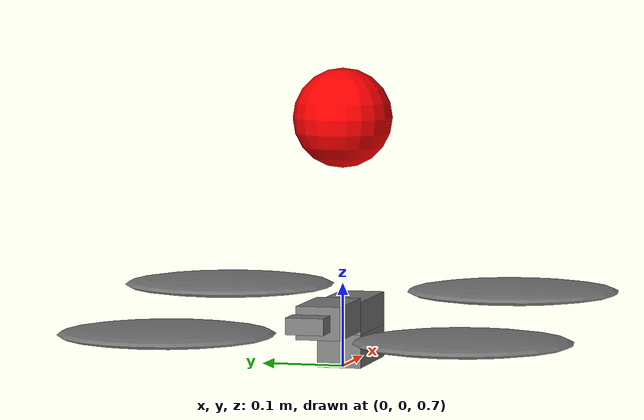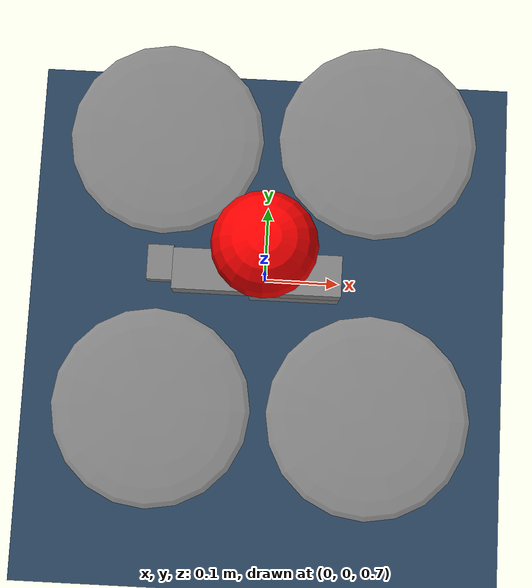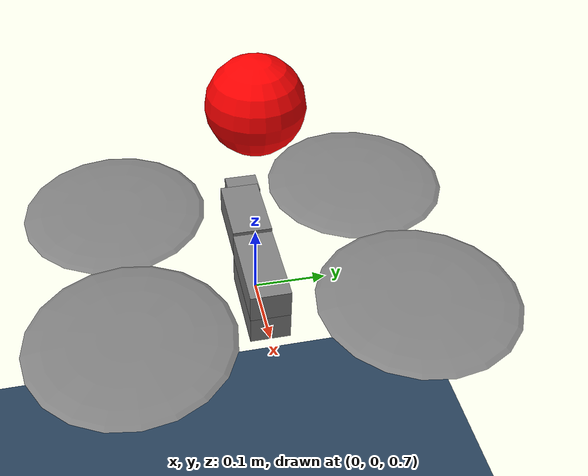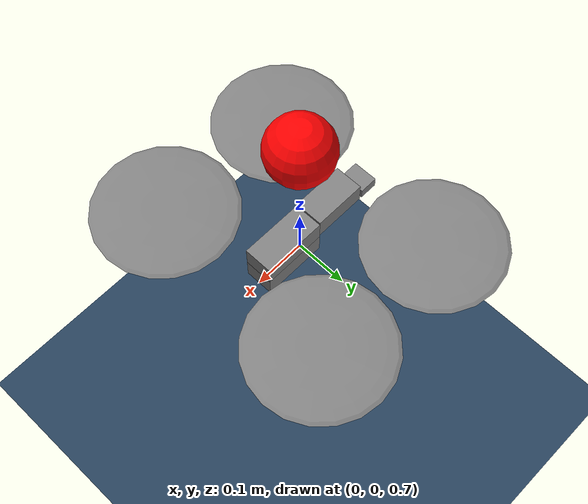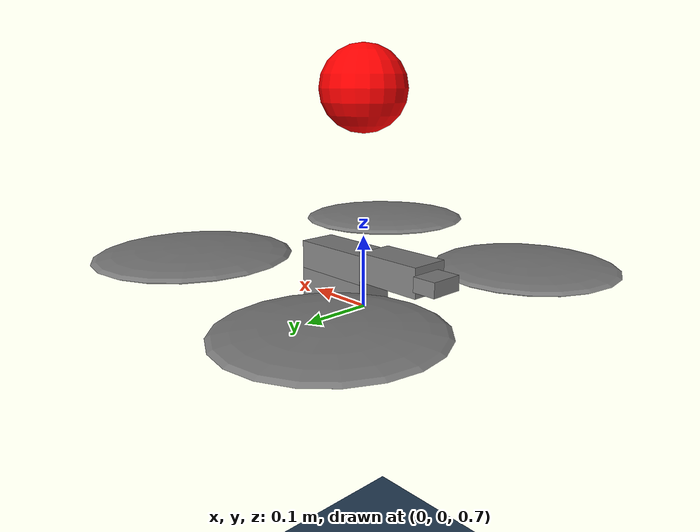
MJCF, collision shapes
<mujoco model="Skydio X2 scene">
  <include file="x2.xml"/>

  <statistic meansize=".05"/>

  <visual>
    <headlight diffuse="0.6 0.6 0.6" ambient="0.3 0.3 0.3" specular="0 0 0"/>
    <rgba haze="0.15 0.25 0.35 1"/>
    <global azimuth="-20" elevation="-20" ellipsoidinertia="true"/>
  </visual>

  <asset>
    <texture type="skybox" builtin="gradient" rgb1="0.3 0.5 0.7" rgb2="0 0 0" width="512" height="3072"/>
    <texture type="2d" name="groundplane" builtin="checker" mark="edge" rgb1="0.2 0.3 0.4" rgb2="0.1 0.2 0.3"
      markrgb="0.8 0.8 0.8" width="300" height="300"/>
    <material name="groundplane" texture="groundplane" texuniform="true" texrepeat="5 5" reflectance="0.2"/>
  </asset>

  <!-- Shilpa -->
  <worldbody>
    <light
      pos="0 0 1.5"
      dir="0 0 -1"
      directional="true"
    />

    <geom
      name="floor"
      size="0 0 0.05"
      type="plane"
      material="groundplane"
    />

    <geom
      name="tracking_target"
      type="sphere"
      size="0.06"
      pos="0 0 1"
      rgba="1 0 0 1"
      contype="0"
      conaffinity="0"
    />
  </worldbody>
</mujoco>

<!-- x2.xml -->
<mujoco model="Skydio X2">
  <compiler inertiafromgeom="true" angle="degree" autolimits="true" assetdir="assets"/>

  <option timestep=".005" iterations="50" tolerance="1e-16" solver="Newton" jacobian="dense" cone="pyramidal" density="1.225" viscosity="1.8e-5">
    <flag contact = "enable"/>
  </option>

  <default>
    <default class="x2">
      <geom mass="0"/>
      <motor ctrlrange="0 200"/>
      <mesh scale="0.01 0.01 0.01"/>
      <default class="visual">
        <geom group="2" type="mesh" contype="0" conaffinity="0"/>
      </default>
      <default class="collision">
        <geom group="3" type="box"/>
        <default class="rotor">
          <geom type="ellipsoid" size=".13 .13 .01"/>
        </default>
      </default>
      <site group="5"/>
    </default>
  </default>

  <asset>
    <texture type="2d" file="X2_lowpoly_texture_SpinningProps_1024.png"/>
    <material name="phong3SG" texture="X2_lowpoly_texture_SpinningProps_1024"/>
    <material name="invisible" rgba="0 0 0 0"/>

    <mesh class="x2" file="X2_lowpoly.obj"/>
    <mesh name="BASE" file="stls/Base.STL"/>
    <mesh name="LINK1" file="stls/Link1.STL"/>
    <mesh name="LINK2" file="stls/Link2.STL"/>
    <mesh name="LINK3" file="stls/Link3.STL"/>
    <mesh name="DYNM" file="stls/XH430.STL"/>
  </asset>

  <worldbody>
    <light name="spotlight" mode="targetbodycom" target="x2" pos="0 -1 2"/>
    <body name="x2" pos="0 0 0.7" childclass="x2">
      <freejoint/>
      <camera name="track" pos="-1 0 .5" xyaxes="0 -1 0 1 0 2" mode="trackcom"/>
      <site name="imu" pos="0 0 .02"/>
      <geom material="phong3SG" mesh="X2_lowpoly" class="visual" quat="0 0 1 1"/>
      <geom class="collision" size=".06 .027 .02" pos=".04 0 .02"/>
      <geom class="collision" size=".06 .027 .02" pos=".04 0 .06"/>
      <geom class="collision" size=".05 .027 .02" pos="-.07 0 .065"/>
      <geom class="collision" size=".023 .017 .01" pos="-.137 .008 .065" quat="1 0 0 1"/>
      <geom name="rotor1" class="rotor" pos="-.14 -.18 .05" mass=".25"/>
      <geom name="rotor2" class="rotor" pos="-.14 .18 .05" mass=".25"/>
      <geom name="rotor3" class="rotor" pos=".14 .18 .08" mass=".25"/>
      <geom name="rotor4" class="rotor" pos=".14 -.18 .08" mass=".25"/>
      <geom size=".16 .04 .02" pos="0 0 0.02" type="ellipsoid" mass=".325" class="visual" material="invisible"/>
      <site name="thrust1" pos="-.14 -.18 .05"/>
      <site name="thrust2" pos="-.14 .18 .05"/>
      <site name="thrust3" pos=".14 .18 .08"/>
      <site name="thrust4" pos=".14 -.18 .08"/>
    </body>
  </worldbody>

  <actuator>
    <motor class="x2" name="thrust1" site="thrust1" gear="0 0 1 0 0 -.0201"/>
    <motor class="x2" name="thrust2" site="thrust2" gear="0 0 1 0 0  .0201"/>
    <motor class="x2" name="thrust3" site="thrust3" gear="0 0 1 0 0  .0201"/>
    <motor class="x2" name="thrust4" site="thrust4" gear="0 0 1 0 0 -.0201"/>
  </actuator>

  <sensor>
    <gyro name="body_gyro" site="imu"/>
    <accelerometer name="body_linacc" site="imu"/>
    <framequat name="body_quat" objtype="site" objname="imu"/>
  </sensor>

  <keyframe>
    <key name="hover" qpos="0 0 .3 1 0 0 0" ctrl="3.2495625 3.2495625 3.2495625 3.2495625"/>
  </keyframe>
</mujoco>
